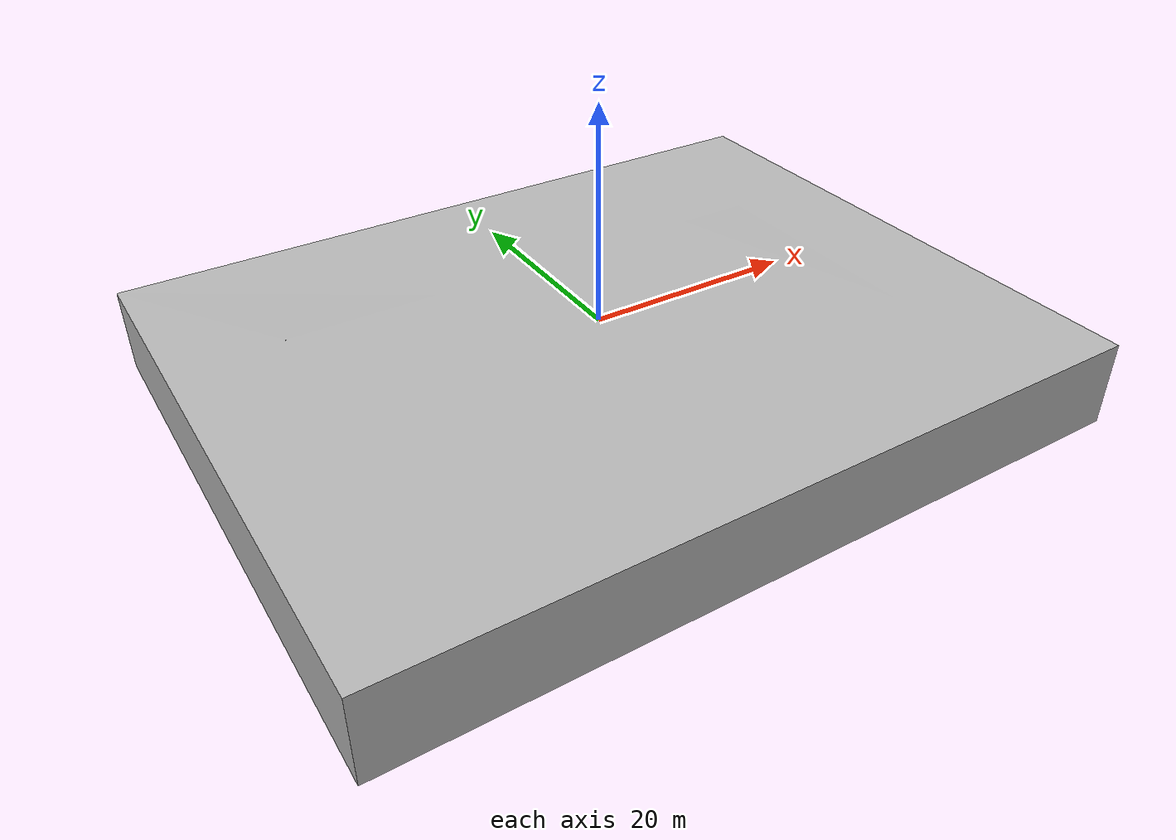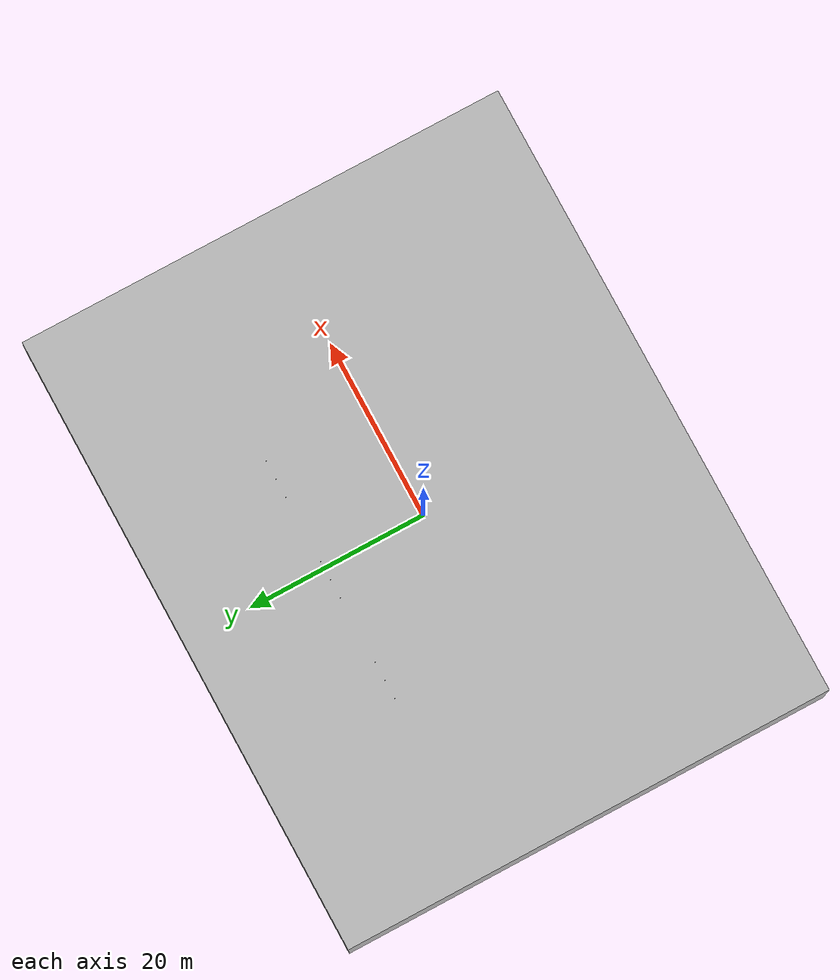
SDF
<?xml version="1.0" ?>
<sdf version="1.5">
  <world name="pool_v2">
    <physics name="default_physics" default="true" type="ode">
      <max_step_size>0.002</max_step_size>
      <real_time_factor>1</real_time_factor>
      <real_time_update_rate>500</real_time_update_rate>
      <ode>
        <solver>
          <type>quick</type>
          <iters>50</iters>
          <sor>0.5</sor>
        </solver>
      </ode>
    </physics>
    <scene>
      <ambient>0.3 0.3 0.3 1.0</ambient>
      <sky>
        <clouds>
          <speed>12</speed>
        </clouds>
      </sky>
      <shadows>1</shadows>
      <fog>
        <color>0.1 0.2 0.3 1.0</color>
        <type>linear</type>
        <density>0.1</density>
        <start>10</start>
        <end>40</end>
      </fog>
    </scene>

    <!--
      Location of the competition pool in C2
      Source: google maps
    -->
    <spherical_coordinates>
      <latitude_deg>24.524294416725887</latitude_deg>
      <longitude_deg>54.4348209296277</longitude_deg>
    </spherical_coordinates>

    <!-- Global light source -->
    <light type="directional" name="sun_diffuse_1">
      <pose>-200 -200 100 0 0 0</pose>
      <diffuse>0.12 0.12 0.12 1</diffuse>
      <specular>0 0 0 1</specular>
      <direction>-0.3 -0.3 -1</direction>
      <cast_shadows>true</cast_shadows>
    </light>

    <light type="directional" name="sun_diffuse_2">
      <pose>-100 50 200 0 0 0</pose>
      <diffuse>0.12 0.12 0.12 1</diffuse>
      <specular>0 0 0 1</specular>
      <direction>-0.3 -0.3 -1</direction>
      <cast_shadows>true</cast_shadows>
    </light>

    <light type="directional" name="sun_diffuse_3">
      <pose>-150 -130 50 0 0 0</pose>
      <diffuse>0.12 0.12 0.12 1</diffuse>
      <specular>0.2 0.2 0.2 1</specular>
      <direction>0.5 0.5 -1</direction>
      <cast_shadows>true</cast_shadows>
    </light>

    <include>
      <uri>model://pool_v2</uri>
      <pose>0 0 0 0 0 0</pose>
    </include>

    <plugin name="underwater_current_plugin" filename="libuuv_underwater_current_ros_plugin.so">
      <namespace>hydrodynamics</namespace>
      <constant_current>
        <topic>current_velocity</topic>
        <velocity>
          <mean>0</mean>
          <min>0</min>
          <max>5</max>
          <mu>0.0</mu>
          <noiseAmp>0.0</noiseAmp>
        </velocity>

        <horizontal_angle>
          <mean>0</mean>
          <min>-3.141592653589793238</min>
          <max>3.141592653589793238</max>
          <mu>0.0</mu>
          <noiseAmp>0.0</noiseAmp>
        </horizontal_angle>

        <vertical_angle>
          <mean>0</mean>
          <min>-3.141592653589793238</min>
          <max>3.141592653589793238</max>
          <mu>0.0</mu>
          <noiseAmp>0.0</noiseAmp>
        </vertical_angle>
      </constant_current>
    </plugin>

    <plugin name="sc_interface" filename="libuuv_sc_ros_interface_plugin.so"/>

  </world>
</sdf>

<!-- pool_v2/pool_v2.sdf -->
<sdf version="1.5">
<model name="pool_v2">
  <static>true</static>
  <link name="pool_link">

  <visual name="surface">
    <cast_shadows>false</cast_shadows>
    <pose>0 0 0 0 0 0</pose>
    <geometry>
      <box>
        <size>55 40 .1</size>
      </box>
    </geometry>
    <material>
      <script>
        <uri>file://Media/materials/scripts/water.material</uri>
        <name>UUVSimulator/StaticWater</name>
      </script>
    </material>
  </visual>

  <visual name="pool_v2">
    <pose>0 0 -3.9 0 0 0</pose>
    <geometry>
      <mesh><uri>model://pool_v2/meshes/pool_v2.obj</uri><scale>1 1 1</scale></mesh>
    </geometry>
  </visual>

  <collision name="pool_v2">
    <pose>0 0 -3.9 0 0 0</pose>
    <geometry>
      <mesh><uri>model://pool_v2/meshes/pool_v2.stl</uri><scale>1 1 1</scale></mesh>
    </geometry>
  </collision>

  </link>
</model>
</sdf>
